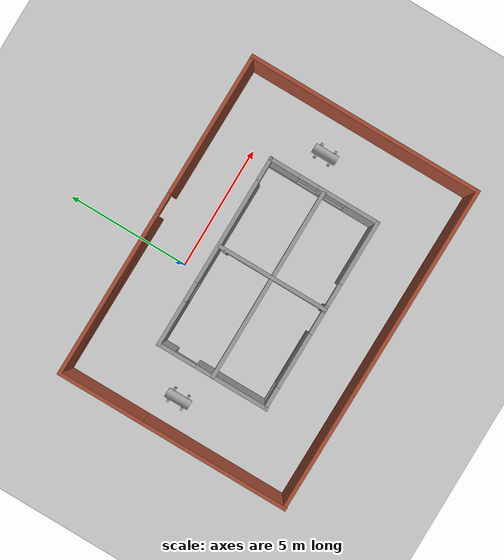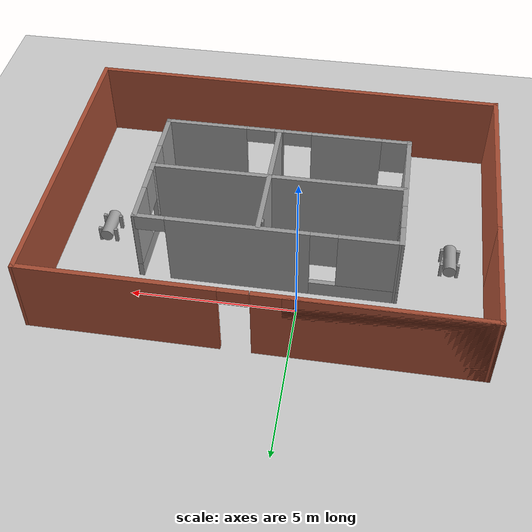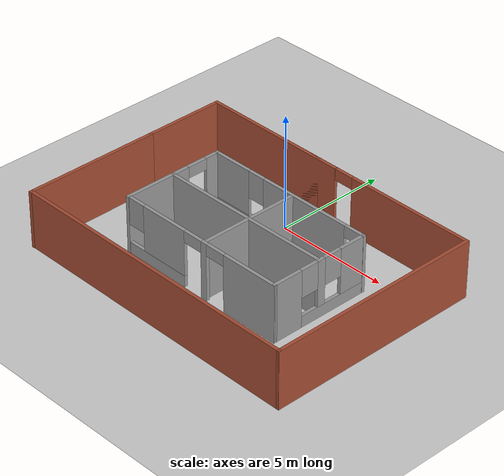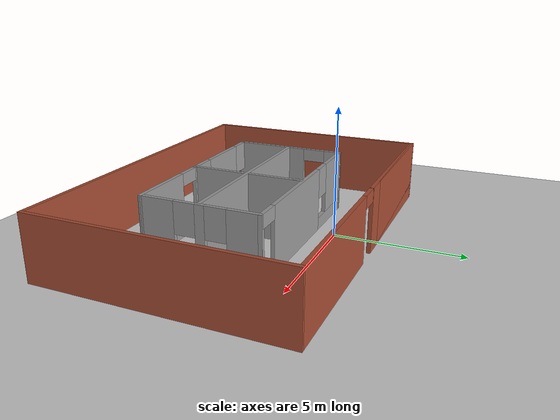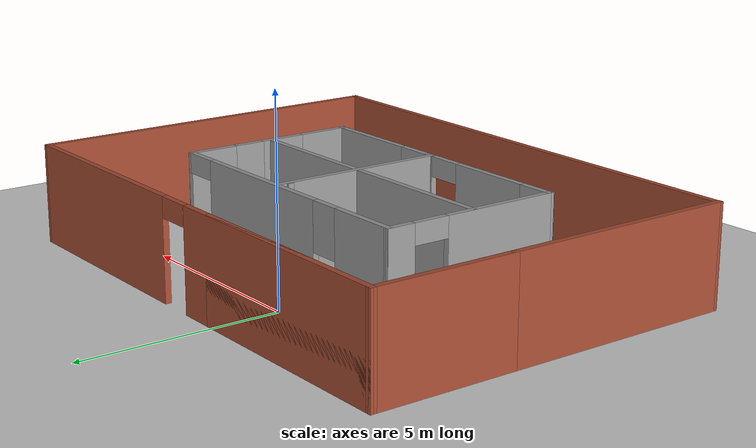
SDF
<sdf version="1.6">
 <world name="default">
  <plugin name="hello" filename="libhello.so"/>
  <light name="sun" type="directional">
   <pose>0 0 10 0 -0 0</pose>
   <diffuse>0.8 0.8 0.8 1</diffuse>
   <specular>0.2 0.2 0.2 1</specular>
   <attenuation>
    <range>1000</range>
    <constant>0.9</constant>
    <linear>0.01</linear>
    <quadratic>0.001</quadratic>
   </attenuation>
   <direction>-0.5 0.1 -0.9</direction>
  </light>
  <model name="ground_plane">
   <static>1</static>
   <link name="link">
    <collision name="collision">
     <geometry><plane><normal>0 0 1</normal><size>100 100</size></plane></geometry>
     <surface><friction><ode><mu>100</mu><mu2>50</mu2></ode></friction></surface>
    </collision>
    <visual name="visual">
     <cast_shadows>0</cast_shadows>
     <geometry><plane><normal>0 0 1</normal><size>100 100</size></plane></geometry>
     <material>
      <script><uri>file://media/materials/scripts/gazebo.material</uri><name>Gazebo/Grey</name></script>
     </material>
    </visual>
   </link>
  </model>
  <gravity>0 0 -9.8</gravity>
  <magnetic_field>6e-06 2.3e-05 -4.2e-05</magnetic_field>
  <atmosphere type="adiabatic"/>
  <physics name="default_physics" default="0" type="ode">
   <max_step_size>0.001</max_step_size>
   <real_time_factor>1</real_time_factor>
   <real_time_update_rate>1000</real_time_update_rate>
  </physics>
  <scene><ambient>0.4 0.4 0.4 1</ambient><background>0.7 0.7 0.7 1</background><shadows>1</shadows></scene>
  <spherical_coordinates>
   <surface_model>EARTH_WGS84</surface_model>
   <latitude_deg>0</latitude_deg>
   <longitude_deg>0</longitude_deg>
   <elevation>0</elevation>
   <heading_deg>0</heading_deg>
  </spherical_coordinates>
  <model name="Building">
   <pose>1.04342 -3.05321 0 0 -0 0</pose>
   <link name="Wall_0">
    <collision name="Wall_0_Collision">
     <geometry><box><size>6.03913 0.15 2.5</size></box></geometry>
     <pose>0 0 1.25 0 -0 0</pose>
    </collision>
    <visual name="Wall_0_Visual">
     <pose>0 0 1.25 0 -0 0</pose>
     <geometry><box><size>6.03913 0.15 2.5</size></box></geometry>
     <material>
      <script><uri>file://media/materials/scripts/gazebo.material</uri><name>Gazebo/Bricks</name></script>
      <ambient>1 1 1 1</ambient>
     </material>
     <meta><layer>0</layer></meta>
    </visual>
    <pose>-6.63599 -1.70753 0 0 0 -1.5708</pose>
   </link>
   <link name="Wall_1">
    <collision name="Wall_1_Collision">
     <geometry><box><size>13.4097 0.15 2.5</size></box></geometry>
     <pose>0 0 1.25 0 -0 0</pose>
    </collision>
    <visual name="Wall_1_Visual">
     <pose>0 0 1.25 0 -0 0</pose>
     <geometry><box><size>13.4097 0.15 2.5</size></box></geometry>
     <material>
      <script><uri>file://media/materials/scripts/gazebo.material</uri><name>Gazebo/Bricks</name></script>
      <ambient>1 1 1 1</ambient>
     </material>
     <meta><layer>0</layer></meta>
    </visual>
    <pose>-0.006325 -4.68577 0 0 0 -0.007717</pose>
   </link>
   <link name="Wall_12">
    <collision name="Wall_12_Collision">
     <geometry><box><size>0.15 0.15 2.5</size></box></geometry>
     <pose>0 0 1.25 0 -0 0</pose>
    </collision>
    <visual name="Wall_12_Visual">
     <pose>0 0 1.25 0 -0 0</pose>
     <geometry><box><size>0.15 0.15 2.5</size></box></geometry>
     <material>
      <script><uri>file://media/materials/scripts/gazebo.material</uri><name>Gazebo/Grey</name></script>
      <ambient>1 1 1 1</ambient>
     </material>
     <meta><layer>0</layer></meta>
    </visual>
    <pose>0.155765 1.91213 0 0 -0 0</pose>
   </link>
   <link name="Wall_13">
    <collision name="Wall_13_Collision">
     <geometry><box><size>0.15 0.15 2.5</size></box></geometry>
     <pose>0 0 1.25 0 -0 0</pose>
    </collision>
    <visual name="Wall_13_Visual">
     <pose>0 0 1.25 0 -0 0</pose>
     <geometry><box><size>0.15 0.15 2.5</size></box></geometry>
     <material>
      <script><uri>file://media/materials/scripts/gazebo.material</uri><name>Gazebo/Grey</name></script>
      <ambient>1 1 1 1</ambient>
     </material>
     <meta><layer>0</layer></meta>
    </visual>
    <pose>0.155765 1.91213 0 0 -0 0</pose>
   </link>
   <link name="Wall_16">
    <collision name="Wall_16_Collision">
     <geometry><box><size>4.5 0.15 2.5</size></box></geometry>
     <pose>0 0 1.25 0 -0 0</pose>
    </collision>
    <visual name="Wall_16_Visual">
     <pose>0 0 1.25 0 -0 0</pose>
     <geometry><box><size>4.5 0.15 2.5</size></box></geometry>
     <material>
      <script><uri>file://media/materials/scripts/gazebo.material</uri><name>Gazebo/Grey</name></script>
      <ambient>1 1 1 1</ambient>
     </material>
     <meta><layer>0</layer></meta>
    </visual>
    <pose>0.209311 -0.044225 0 0 -0 1.5708</pose>
   </link>
   <link name="Wall_18">
    <collision name="Wall_18_Collision">
     <geometry><box><size>7.75 0.15 2.5</size></box></geometry>
     <pose>0 0 1.25 0 -0 0</pose>
    </collision>
    <visual name="Wall_18_Visual">
     <pose>0 0 1.25 0 -0 0</pose>
     <geometry><box><size>7.75 0.15 2.5</size></box></geometry>
     <material>
      <script><uri>file://media/materials/scripts/gazebo.material</uri><name>Gazebo/Grey</name></script>
      <ambient>1 1 1 1</ambient>
     </material>
     <meta><layer>0</layer></meta>
    </visual>
    <pose>-0.08044 -0.029696 0 0 -0 0</pose>
   </link>
   <link name="Wall_2">
    <collision name="Wall_2_Collision">
     <geometry><box><size>9.53913 0.15 2.5</size></box></geometry>
     <pose>0 0 1.25 0 -0 0</pose>
    </collision>
    <visual name="Wall_2_Visual">
     <pose>0 0 1.25 0 -0 0</pose>
     <geometry><box><size>9.53913 0.15 2.5</size></box></geometry>
     <material>
      <script><uri>file://media/materials/scripts/gazebo.material</uri><name>Gazebo/Bricks</name></script>
      <ambient>1 1 1 1</ambient>
     </material>
     <meta><layer>0</layer></meta>
    </visual>
    <pose>6.63657 -0.042371 0 0 -0 1.5708</pose>
   </link>
   <link name="Wall_3">
    <pose>-0.006325 4.69461 0 0 -0 3.13519</pose>
    <visual name="Wall_3_Visual_0">
     <pose>-3.80988 0 1.25 0 -0 0</pose>
     <geometry><box><size>5.78985 0.15 2.5</size></box></geometry>
     <material>
      <script><uri>file://media/materials/scripts/gazebo.material</uri><name>Gazebo/Bricks</name></script>
      <ambient>1 1 1 1</ambient>
     </material>
     <meta><layer>0</layer></meta>
    </visual>
    <collision name="Wall_3_Collision_0">
     <geometry><box><size>5.78985 0.15 2.5</size></box></geometry>
     <pose>-3.80988 0 1.25 0 -0 0</pose>
    </collision>
    <visual name="Wall_3_Visual_1">
     <pose>3.34492 0 1.25 0 -0 0</pose>
     <geometry><box><size>6.71976 0.15 2.5</size></box></geometry>
     <material>
      <script><uri>file://media/materials/scripts/gazebo.material</uri><name>Gazebo/Bricks</name></script>
      <ambient>1 1 1 1</ambient>
     </material>
     <meta><layer>0</layer></meta>
    </visual>
    <collision name="Wall_3_Collision_1">
     <geometry><box><size>6.71976 0.15 2.5</size></box></geometry>
     <pose>3.34492 0 1.25 0 -0 0</pose>
    </collision>
    <visual name="Wall_3_Visual_2">
     <pose>3.78107 0 1.25 0 -0 0</pose>
     <geometry><box><size>5.84745 0.15 2.5</size></box></geometry>
     <material>
      <script><uri>file://media/materials/scripts/gazebo.material</uri><name>Gazebo/Bricks</name></script>
      <ambient>1 1 1 1</ambient>
     </material>
     <meta><layer>0</layer></meta>
    </visual>
    <collision name="Wall_3_Collision_2">
     <geometry><box><size>5.84745 0.15 2.5</size></box></geometry>
     <pose>3.78107 0 1.25 0 -0 0</pose>
    </collision>
    <visual name="Wall_3_Visual_3">
     <pose>-0.478802 0 2.25 0 -0 0</pose>
     <geometry><box><size>0.872303 0.15 0.5</size></box></geometry>
     <material>
      <script><uri>file://media/materials/scripts/gazebo.material</uri><name>Gazebo/Bricks</name></script>
      <ambient>1 1 1 1</ambient>
     </material>
     <meta><layer>0</layer></meta>
    </visual>
    <collision name="Wall_3_Collision_3">
     <geometry><box><size>0.872303 0.15 0.5</size></box></geometry>
     <pose>-0.478802 0 2.25 0 -0 0</pose>
    </collision>
   </link>
   <link name="Wall_4">
    <collision name="Wall_4_Collision">
     <geometry><box><size>3.65 0.15 2.5</size></box></geometry>
     <pose>0 0 1.25 0 -0 0</pose>
    </collision>
    <visual name="Wall_4_Visual">
     <pose>0 0 1.25 0 -0 0</pose>
     <geometry><box><size>3.65 0.15 2.5</size></box></geometry>
     <material>
      <script><uri>file://media/materials/scripts/gazebo.material</uri><name>Gazebo/Bricks</name></script>
      <ambient>1 1 1 1</ambient>
     </material>
     <meta><layer>0</layer></meta>
    </visual>
    <pose>-6.63599 2.98703 0 0 0 -1.5708</pose>
   </link>
   <link name="Wall_6">
    <pose>-3.91336 -0.002529 0 0 0 -1.5708</pose>
    <visual name="Wall_6_Visual_0">
     <pose>-1.95748 0 1.25 0 -0 0</pose>
     <geometry><box><size>0.710549 0.15 2.5</size></box></geometry>
     <material>
      <script><uri>file://media/materials/scripts/gazebo.material</uri><name>Gazebo/Grey</name></script>
      <ambient>1 1 1 1</ambient>
     </material>
     <meta><layer>0</layer></meta>
    </visual>
    <collision name="Wall_6_Collision_0">
     <geometry><box><size>0.710549 0.15 2.5</size></box></geometry>
     <pose>-1.95748 0 1.25 0 -0 0</pose>
    </collision>
    <visual name="Wall_6_Visual_1">
     <pose>0.805274 0 1.25 0 -0 0</pose>
     <geometry><box><size>3.01495 0.15 2.5</size></box></geometry>
     <material>
      <script><uri>file://media/materials/scripts/gazebo.material</uri><name>Gazebo/Grey</name></script>
      <ambient>1 1 1 1</ambient>
     </material>
     <meta><layer>0</layer></meta>
    </visual>
    <collision name="Wall_6_Collision_1">
     <geometry><box><size>3.01495 0.15 2.5</size></box></geometry>
     <pose>0.805274 0 1.25 0 -0 0</pose>
    </collision>
    <visual name="Wall_6_Visual_2">
     <pose>-1.1522 0 2.25 0 -0 0</pose>
     <geometry><box><size>0.9 0.15 0.5</size></box></geometry>
     <material>
      <script><uri>file://media/materials/scripts/gazebo.material</uri><name>Gazebo/Grey</name></script>
      <ambient>1 1 1 1</ambient>
     </material>
     <meta><layer>0</layer></meta>
    </visual>
    <collision name="Wall_6_Collision_2">
     <geometry><box><size>0.9 0.15 0.5</size></box></geometry>
     <pose>-1.1522 0 2.25 0 -0 0</pose>
    </collision>
   </link>
   <link name="Wall_7">
    <pose>-0.04296 -2.23022 0 0 0 -0.002598</pose>
    <visual name="Wall_7_Visual_0">
     <pose>-3.87288 0 1.25 0 -0 0</pose>
     <geometry><box><size>0.145062 0.15 2.5</size></box></geometry>
     <material>
      <script><uri>file://media/materials/scripts/gazebo.material</uri><name>Gazebo/Grey</name></script>
      <ambient>1 1 1 1</ambient>
     </material>
     <meta><layer>0</layer></meta>
    </visual>
    <collision name="Wall_7_Collision_0">
     <geometry><box><size>0.145062 0.15 2.5</size></box></geometry>
     <pose>-3.87288 0 1.25 0 -0 0</pose>
    </collision>
    <visual name="Wall_7_Visual_1">
     <pose>0.276 0 1.25 0 -0 0</pose>
     <geometry><box><size>0.29028 0.15 2.5</size></box></geometry>
     <material>
      <script><uri>file://media/materials/scripts/gazebo.material</uri><name>Gazebo/Grey</name></script>
      <ambient>1 1 1 1</ambient>
     </material>
     <meta><layer>0</layer></meta>
    </visual>
    <collision name="Wall_7_Collision_1">
     <geometry><box><size>0.29028 0.15 2.5</size></box></geometry>
     <pose>0.276 0 1.25 0 -0 0</pose>
    </collision>
    <visual name="Wall_7_Visual_2">
     <pose>2.63327 0 1.25 0 -0 0</pose>
     <geometry><box><size>2.62427 0.15 2.5</size></box></geometry>
     <material>
      <script><uri>file://media/materials/scripts/gazebo.material</uri><name>Gazebo/Grey</name></script>
      <ambient>1 1 1 1</ambient>
     </material>
     <meta><layer>0</layer></meta>
    </visual>
    <collision name="Wall_7_Collision_2">
     <geometry><box><size>2.62427 0.15 2.5</size></box></geometry>
     <pose>2.63327 0 1.25 0 -0 0</pose>
    </collision>
    <visual name="Wall_7_Visual_3">
     <pose>-2.28475 0 0.25 0 -0 0</pose>
     <geometry><box><size>3.03121 0.15 0.5</size></box></geometry>
     <material>
      <script><uri>file://media/materials/scripts/gazebo.material</uri><name>Gazebo/Grey</name></script>
      <ambient>1 1 1 1</ambient>
     </material>
     <meta><layer>0</layer></meta>
    </visual>
    <collision name="Wall_7_Collision_3">
     <geometry><box><size>3.03121 0.15 0.5</size></box></geometry>
     <pose>-2.28475 0 0.25 0 -0 0</pose>
    </collision>
    <visual name="Wall_7_Visual_4">
     <pose>-1.88474 0 1.5 0 -0 0</pose>
     <geometry><box><size>2.23121 0.15 2</size></box></geometry>
     <material>
      <script><uri>file://media/materials/scripts/gazebo.material</uri><name>Gazebo/Grey</name></script>
      <ambient>1 1 1 1</ambient>
     </material>
     <meta><layer>0</layer></meta>
    </visual>
    <collision name="Wall_7_Collision_4">
     <geometry><box><size>2.23121 0.15 2</size></box></geometry>
     <pose>-1.88474 0 1.5 0 -0 0</pose>
    </collision>
    <visual name="Wall_7_Visual_5">
     <pose>-3.40035 0 1.9 0 -0 0</pose>
     <geometry><box><size>0.8 0.15 1.2</size></box></geometry>
     <material>
      <script><uri>file://media/materials/scripts/gazebo.material</uri><name>Gazebo/Grey</name></script>
      <ambient>1 1 1 1</ambient>
     </material>
     <meta><layer>0</layer></meta>
    </visual>
    <collision name="Wall_7_Collision_5">
     <geometry><box><size>0.8 0.15 1.2</size></box></geometry>
     <pose>-3.40035 0 1.9 0 -0 0</pose>
    </collision>
    <visual name="Wall_7_Visual_6">
     <pose>0.87114 0 2.25 0 -0 0</pose>
     <geometry><box><size>0.9 0.15 0.5</size></box></geometry>
     <material>
      <script><uri>file://media/materials/scripts/gazebo.material</uri><name>Gazebo/Grey</name></script>
      <ambient>1 1 1 1</ambient>
     </material>
     <meta><layer>0</layer></meta>
    </visual>
    <collision name="Wall_7_Collision_6">
     <geometry><box><size>0.9 0.15 0.5</size></box></geometry>
     <pose>0.87114 0 2.25 0 -0 0</pose>
    </collision>
    <visual name="Wall_7_Visual_7">
     <pose>-0.31914 0 2.25 0 -0 0</pose>
     <geometry><box><size>0.9 0.15 0.5</size></box></geometry>
     <material>
      <script><uri>file://media/materials/scripts/gazebo.material</uri><name>Gazebo/Grey</name></script>
      <ambient>1 1 1 1</ambient>
     </material>
     <meta><layer>0</layer></meta>
    </visual>
    <collision name="Wall_7_Collision_7">
     <geometry><box><size>0.9 0.15 0.5</size></box></geometry>
     <pose>-0.31914 0 2.25 0 -0 0</pose>
    </collision>
   </link>
   <link name="Wall_8">
    <pose>3.82744 -0.002529 0 0 -0 1.5708</pose>
    <visual name="Wall_8_Visual_0">
     <pose>-1.61662 0 1.25 0 -0 0</pose>
     <geometry><box><size>1.35204 0.15 2.5</size></box></geometry>
     <material>
      <script><uri>file://media/materials/scripts/gazebo.material</uri><name>Gazebo/Grey</name></script>
      <ambient>1 1 1 1</ambient>
     </material>
     <meta><layer>0</layer></meta>
    </visual>
    <collision name="Wall_8_Collision_0">
     <geometry><box><size>1.35204 0.15 2.5</size></box></geometry>
     <pose>-1.61662 0 1.25 0 -0 0</pose>
    </collision>
    <visual name="Wall_8_Visual_1">
     <pose>0.676019 0 0.25 0 -0 0</pose>
     <geometry><box><size>3.23324 0.15 0.5</size></box></geometry>
     <material>
      <script><uri>file://media/materials/scripts/gazebo.material</uri><name>Gazebo/Grey</name></script>
      <ambient>1 1 1 1</ambient>
     </material>
     <meta><layer>0</layer></meta>
    </visual>
    <collision name="Wall_8_Collision_1">
     <geometry><box><size>3.23324 0.15 0.5</size></box></geometry>
     <pose>0.676019 0 0.25 0 -0 0</pose>
    </collision>
    <visual name="Wall_8_Visual_2">
     <pose>0.041301 0 1.5 0 -0 0</pose>
     <geometry><box><size>0.3638 0.15 2</size></box></geometry>
     <material>
      <script><uri>file://media/materials/scripts/gazebo.material</uri><name>Gazebo/Grey</name></script>
      <ambient>1 1 1 1</ambient>
     </material>
     <meta><layer>0</layer></meta>
    </visual>
    <collision name="Wall_8_Collision_2">
     <geometry><box><size>0.3638 0.15 2</size></box></geometry>
     <pose>0.041301 0 1.5 0 -0 0</pose>
    </collision>
    <visual name="Wall_8_Visual_3">
     <pose>1.65792 0 1.5 0 -0 0</pose>
     <geometry><box><size>1.26944 0.15 2</size></box></geometry>
     <material>
      <script><uri>file://media/materials/scripts/gazebo.material</uri><name>Gazebo/Grey</name></script>
      <ambient>1 1 1 1</ambient>
     </material>
     <meta><layer>0</layer></meta>
    </visual>
    <collision name="Wall_8_Collision_3">
     <geometry><box><size>1.26944 0.15 2</size></box></geometry>
     <pose>1.65792 0 1.5 0 -0 0</pose>
    </collision>
    <visual name="Wall_8_Visual_4">
     <pose>-0.540598 0 1.9 0 -0 0</pose>
     <geometry><box><size>0.8 0.15 1.2</size></box></geometry>
     <material>
      <script><uri>file://media/materials/scripts/gazebo.material</uri><name>Gazebo/Grey</name></script>
      <ambient>1 1 1 1</ambient>
     </material>
     <meta><layer>0</layer></meta>
    </visual>
    <collision name="Wall_8_Collision_4">
     <geometry><box><size>0.8 0.15 1.2</size></box></geometry>
     <pose>-0.540598 0 1.9 0 -0 0</pose>
    </collision>
    <visual name="Wall_8_Visual_5">
     <pose>0.623201 0 1.9 0 -0 0</pose>
     <geometry><box><size>0.8 0.15 1.2</size></box></geometry>
     <material>
      <script><uri>file://media/materials/scripts/gazebo.material</uri><name>Gazebo/Grey</name></script>
      <ambient>1 1 1 1</ambient>
     </material>
     <meta><layer>0</layer></meta>
    </visual>
    <collision name="Wall_8_Collision_5">
     <geometry><box><size>0.8 0.15 1.2</size></box></geometry>
     <pose>0.623201 0 1.9 0 -0 0</pose>
    </collision>
   </link>
   <link name="Wall_9">
    <pose>-0.035398 2.22516 0 0 -0 3.13899</pose>
    <visual name="Wall_9_Visual_0">
     <pose>-3.90573 0 1.25 0 -0 0</pose>
     <geometry><box><size>0.079351 0.15 2.5</size></box></geometry>
     <material>
      <script><uri>file://media/materials/scripts/gazebo.material</uri><name>Gazebo/Grey</name></script>
      <ambient>1 1 1 1</ambient>
     </material>
     <meta><layer>0</layer></meta>
    </visual>
    <collision name="Wall_9_Collision_0">
     <geometry><box><size>0.079351 0.15 2.5</size></box></geometry>
     <pose>-3.90573 0 1.25 0 -0 0</pose>
    </collision>
    <visual name="Wall_9_Visual_1">
     <pose>-0.845033 0 1.25 0 -0 0</pose>
     <geometry><box><size>4.24205 0.15 2.5</size></box></geometry>
     <material>
      <script><uri>file://media/materials/scripts/gazebo.material</uri><name>Gazebo/Grey</name></script>
      <ambient>1 1 1 1</ambient>
     </material>
     <meta><layer>0</layer></meta>
    </visual>
    <collision name="Wall_9_Collision_1">
     <geometry><box><size>4.24205 0.15 2.5</size></box></geometry>
     <pose>-0.845033 0 1.25 0 -0 0</pose>
    </collision>
    <visual name="Wall_9_Visual_2">
     <pose>2.6107 0 0.25 0 -0 0</pose>
     <geometry><box><size>2.66942 0.15 0.5</size></box></geometry>
     <material>
      <script><uri>file://media/materials/scripts/gazebo.material</uri><name>Gazebo/Grey</name></script>
      <ambient>1 1 1 1</ambient>
     </material>
     <meta><layer>0</layer></meta>
    </visual>
    <collision name="Wall_9_Collision_2">
     <geometry><box><size>2.66942 0.15 0.5</size></box></geometry>
     <pose>2.6107 0 0.25 0 -0 0</pose>
    </collision>
    <visual name="Wall_9_Visual_3">
     <pose>3.0107 0 1.5 0 -0 0</pose>
     <geometry><box><size>1.86942 0.15 2</size></box></geometry>
     <material>
      <script><uri>file://media/materials/scripts/gazebo.material</uri><name>Gazebo/Grey</name></script>
      <ambient>1 1 1 1</ambient>
     </material>
     <meta><layer>0</layer></meta>
    </visual>
    <collision name="Wall_9_Collision_3">
     <geometry><box><size>1.86942 0.15 2</size></box></geometry>
     <pose>3.0107 0 1.5 0 -0 0</pose>
    </collision>
    <visual name="Wall_9_Visual_4">
     <pose>1.67599 0 1.9 0 -0 0</pose>
     <geometry><box><size>0.8 0.15 1.2</size></box></geometry>
     <material>
      <script><uri>file://media/materials/scripts/gazebo.material</uri><name>Gazebo/Grey</name></script>
      <ambient>1 1 1 1</ambient>
     </material>
     <meta><layer>0</layer></meta>
    </visual>
    <collision name="Wall_9_Collision_4">
     <geometry><box><size>0.8 0.15 1.2</size></box></geometry>
     <pose>1.67599 0 1.9 0 -0 0</pose>
    </collision>
    <visual name="Wall_9_Visual_5">
     <pose>-3.41606 0 2.25 0 -0 0</pose>
     <geometry><box><size>0.9 0.15 0.5</size></box></geometry>
     <material>
      <script><uri>file://media/materials/scripts/gazebo.material</uri><name>Gazebo/Grey</name></script>
      <ambient>1 1 1 1</ambient>
     </material>
     <meta><layer>0</layer></meta>
    </visual>
    <collision name="Wall_9_Collision_5">
     <geometry><box><size>0.9 0.15 0.5</size></box></geometry>
     <pose>-3.41606 0 2.25 0 -0 0</pose>
    </collision>
   </link>
   <static>1</static>
  </model>
  <model name="HumanoidRobot">
   <link name="link_0">
    <pose>0 0 0.088 1.6 -0 0</pose>
    <inertial>
     <mass>1</mass>
     <inertia><ixx>0.145833</ixx><ixy>0</ixy><ixz>0</ixz><iyy>0.145833</iyy><iyz>0</iyz><izz>0.125</izz></inertia>
    </inertial>
    <visual name="visual">
     <geometry><cylinder><radius>0.2</radius><length>1</length></cylinder></geometry>
     <material>
      <lighting>1</lighting>
      <script><uri>file://media/materials/scripts/gazebo.material</uri><name>Gazebo/Grey</name></script>
      <shader type="pixel"><normal_map>__default__</normal_map></shader>
      <ambient>0.3 0.3 0.3 1</ambient>
      <diffuse>0.7 0.7 0.7 1</diffuse>
      <specular>0.01 0.01 0.01 1</specular>
      <emissive>0 0 0 1</emissive>
     </material>
    </visual>
    <collision name="collision">
     <geometry><cylinder><radius>0.2</radius><length>1</length></cylinder></geometry>
     <surface>
      <friction>
       <ode><mu>1</mu><mu2>1</mu2><fdir1>0 0 0</fdir1><slip1>0</slip1><slip2>0</slip2></ode>
       <torsional>
        <coefficient>1</coefficient>
        <patch_radius>0</patch_radius>
        <surface_radius>0</surface_radius>
        <use_patch_radius>1</use_patch_radius>
        <ode><slip>0</slip></ode>
       </torsional>
      </friction>
      <bounce><restitution_coefficient>0</restitution_coefficient><threshold>1e+06</threshold></bounce>
      <contact>
       <collide_without_contact>0</collide_without_contact>
       <collide_without_contact_bitmask>1</collide_without_contact_bitmask>
       <collide_bitmask>1</collide_bitmask>
       <ode>
        <soft_cfm>0</soft_cfm>
        <soft_erp>0.2</soft_erp>
        <kp>1e+13</kp>
        <kd>1</kd>
        <max_vel>0.01</max_vel>
        <min_depth>0</min_depth>
       </ode>
       <bullet>
        <split_impulse>1</split_impulse>
        <split_impulse_penetration_threshold>-0.01</split_impulse_penetration_threshold>
        <soft_cfm>0</soft_cfm>
        <soft_erp>0.2</soft_erp>
        <kp>1e+13</kp>
        <kd>1</kd>
       </bullet>
      </contact>
     </surface>
    </collision>
   </link>
   <link name="link_1">
    <pose>0.25 0.3 -0.022 0 -0 0</pose>
    <inertial>
     <mass>1</mass>
     <inertia>
      <ixx>0.166667</ixx>
      <ixy>0</ixy>
      <ixz>0</ixz>
      <iyy>0.166667</iyy>
      <iyz>0</iyz>
      <izz>0.166667</izz>
     </inertia>
    </inertial>
    <visual name="visual">
     <geometry><box><size>0.1 0.1 0.5</size></box></geometry>
     <material>
      <lighting>1</lighting>
      <script><uri>file://media/materials/scripts/gazebo.material</uri><name>Gazebo/Grey</name></script>
      <shader type="pixel"><normal_map>__default__</normal_map></shader>
      <ambient>0.3 0.3 0.3 1</ambient>
      <diffuse>0.7 0.7 0.7 1</diffuse>
      <specular>0.01 0.01 0.01 1</specular>
      <emissive>0 0 0 1</emissive>
     </material>
    </visual>
    <collision name="collision">
     <geometry><box><size>0.1 0.1 0.5</size></box></geometry>
     <surface>
      <friction>
       <ode><mu>1</mu><mu2>1</mu2><fdir1>0 0 0</fdir1><slip1>0</slip1><slip2>0</slip2></ode>
       <torsional>
        <coefficient>1</coefficient>
        <patch_radius>0</patch_radius>
        <surface_radius>0</surface_radius>
        <use_patch_radius>1</use_patch_radius>
        <ode><slip>0</slip></ode>
       </torsional>
      </friction>
      <bounce><restitution_coefficient>0</restitution_coefficient><threshold>1e+06</threshold></bounce>
      <contact>
       <collide_without_contact>0</collide_without_contact>
       <collide_without_contact_bitmask>1</collide_without_contact_bitmask>
       <collide_bitmask>1</collide_bitmask>
       <ode>
        <soft_cfm>0</soft_cfm>
        <soft_erp>0.2</soft_erp>
        <kp>1e+13</kp>
        <kd>1</kd>
        <max_vel>0.01</max_vel>
        <min_depth>0</min_depth>
       </ode>
       <bullet>
        <split_impulse>1</split_impulse>
        <split_impulse_penetration_threshold>-0.01</split_impulse_penetration_threshold>
        <soft_cfm>0</soft_cfm>
        <soft_erp>0.2</soft_erp>
        <kp>1e+13</kp>
        <kd>1</kd>
       </bullet>
      </contact>
     </surface>
    </collision>
   </link>
   <link name="link_1_clone">
    <pose>0.25 -0.3 -0.022 0 -0 0</pose>
    <inertial>
     <mass>1</mass>
     <inertia>
      <ixx>0.166667</ixx>
      <ixy>0</ixy>
      <ixz>0</ixz>
      <iyy>0.166667</iyy>
      <iyz>0</iyz>
      <izz>0.166667</izz>
     </inertia>
    </inertial>
    <visual name="visual">
     <geometry><box><size>0.1 0.1 0.5</size></box></geometry>
     <material>
      <lighting>1</lighting>
      <script><uri>file://media/materials/scripts/gazebo.material</uri><name>Gazebo/Grey</name></script>
      <shader type="pixel"><normal_map>__default__</normal_map></shader>
      <ambient>0.3 0.3 0.3 1</ambient>
      <diffuse>0.7 0.7 0.7 1</diffuse>
      <specular>0.01 0.01 0.01 1</specular>
      <emissive>0 0 0 1</emissive>
     </material>
    </visual>
    <collision name="collision">
     <geometry><box><size>0.1 0.1 0.5</size></box></geometry>
     <surface>
      <friction>
       <ode><mu>1</mu><mu2>1</mu2><fdir1>0 0 0</fdir1><slip1>0</slip1><slip2>0</slip2></ode>
       <torsional>
        <coefficient>1</coefficient>
        <patch_radius>0</patch_radius>
        <surface_radius>0</surface_radius>
        <use_patch_radius>1</use_patch_radius>
        <ode><slip>0</slip></ode>
       </torsional>
      </friction>
      <bounce><restitution_coefficient>0</restitution_coefficient><threshold>1e+06</threshold></bounce>
      <contact>
       <collide_without_contact>0</collide_without_contact>
       <collide_without_contact_bitmask>1</collide_without_contact_bitmask>
       <collide_bitmask>1</collide_bitmask>
       <ode>
        <soft_cfm>0</soft_cfm>
        <soft_erp>0.2</soft_erp>
        <kp>1e+13</kp>
        <kd>1</kd>
        <max_vel>0.01</max_vel>
        <min_depth>0</min_depth>
       </ode>
       <bullet>
        <split_impulse>1</split_impulse>
        <split_impulse_penetration_threshold>-0.01</split_impulse_penetration_threshold>
        <soft_cfm>0</soft_cfm>
        <soft_erp>0.2</soft_erp>
        <kp>1e+13</kp>
        <kd>1</kd>
       </bullet>
      </contact>
     </surface>
    </collision>
   </link>
   <link name="link_1_clone_0">
    <pose>-0.25 0.3 -0.022 0 -0 0</pose>
    <inertial>
     <mass>1</mass>
     <inertia>
      <ixx>0.166667</ixx>
      <ixy>0</ixy>
      <ixz>0</ixz>
      <iyy>0.166667</iyy>
      <iyz>0</iyz>
      <izz>0.166667</izz>
     </inertia>
    </inertial>
    <visual name="visual">
     <geometry><box><size>0.1 0.1 0.5</size></box></geometry>
     <material>
      <lighting>1</lighting>
      <script><uri>file://media/materials/scripts/gazebo.material</uri><name>Gazebo/Grey</name></script>
      <shader type="pixel"><normal_map>__default__</normal_map></shader>
      <ambient>0.3 0.3 0.3 1</ambient>
      <diffuse>0.7 0.7 0.7 1</diffuse>
      <specular>0.01 0.01 0.01 1</specular>
      <emissive>0 0 0 1</emissive>
     </material>
    </visual>
    <collision name="collision">
     <geometry><box><size>0.1 0.1 0.5</size></box></geometry>
     <surface>
      <friction>
       <ode><mu>1</mu><mu2>1</mu2><fdir1>0 0 0</fdir1><slip1>0</slip1><slip2>0</slip2></ode>
       <torsional>
        <coefficient>1</coefficient>
        <patch_radius>0</patch_radius>
        <surface_radius>0</surface_radius>
        <use_patch_radius>1</use_patch_radius>
        <ode><slip>0</slip></ode>
       </torsional>
      </friction>
      <bounce><restitution_coefficient>0</restitution_coefficient><threshold>1e+06</threshold></bounce>
      <contact>
       <collide_without_contact>0</collide_without_contact>
       <collide_without_contact_bitmask>1</collide_without_contact_bitmask>
       <collide_bitmask>1</collide_bitmask>
       <ode>
        <soft_cfm>0</soft_cfm>
        <soft_erp>0.2</soft_erp>
        <kp>1e+13</kp>
        <kd>1</kd>
        <max_vel>0.01</max_vel>
        <min_depth>0</min_depth>
       </ode>
       <bullet>
        <split_impulse>1</split_impulse>
        <split_impulse_penetration_threshold>-0.01</split_impulse_penetration_threshold>
        <soft_cfm>0</soft_cfm>
        <soft_erp>0.2</soft_erp>
        <kp>1e+13</kp>
        <kd>1</kd>
       </bullet>
      </contact>
     </surface>
    </collision>
   </link>
   <link name="link_1_clone_1">
    <pose>-0.25 -0.3 -0.022 0 -0 0</pose>
    <inertial>
     <mass>1</mass>
     <inertia>
      <ixx>0.166667</ixx>
      <ixy>0</ixy>
      <ixz>0</ixz>
      <iyy>0.166667</iyy>
      <iyz>0</iyz>
      <izz>0.166667</izz>
     </inertia>
    </inertial>
    <visual name="visual">
     <geometry><box><size>0.1 0.1 0.5</size></box></geometry>
     <material>
      <lighting>1</lighting>
      <script><uri>file://media/materials/scripts/gazebo.material</uri><name>Gazebo/Grey</name></script>
      <shader type="pixel"><normal_map>__default__</normal_map></shader>
      <ambient>0.3 0.3 0.3 1</ambient>
      <diffuse>0.7 0.7 0.7 1</diffuse>
      <specular>0.01 0.01 0.01 1</specular>
      <emissive>0 0 0 1</emissive>
     </material>
    </visual>
    <collision name="collision">
     <geometry><box><size>0.1 0.1 0.5</size></box></geometry>
     <surface>
      <friction>
       <ode><mu>1</mu><mu2>1</mu2><fdir1>0 0 0</fdir1><slip1>0</slip1><slip2>0</slip2></ode>
       <torsional>
        <coefficient>1</coefficient>
        <patch_radius>0</patch_radius>
        <surface_radius>0</surface_radius>
        <use_patch_radius>1</use_patch_radius>
        <ode><slip>0</slip></ode>
       </torsional>
      </friction>
      <bounce><restitution_coefficient>0</restitution_coefficient><threshold>1e+06</threshold></bounce>
      <contact>
       <collide_without_contact>0</collide_without_contact>
       <collide_without_contact_bitmask>1</collide_without_contact_bitmask>
       <collide_bitmask>1</collide_bitmask>
       <ode>
        <soft_cfm>0</soft_cfm>
        <soft_erp>0.2</soft_erp>
        <kp>1e+13</kp>
        <kd>1</kd>
        <max_vel>0.01</max_vel>
        <min_depth>0</min_depth>
       </ode>
       <bullet>
        <split_impulse>1</split_impulse>
        <split_impulse_penetration_threshold>-0.01</split_impulse_penetration_threshold>
        <soft_cfm>0</soft_cfm>
        <soft_erp>0.2</soft_erp>
        <kp>1e+13</kp>
        <kd>1</kd>
       </bullet>
      </contact>
     </surface>
    </collision>
   </link>
   <joint name="link_0_JOINT_0" type="revolute">
    <parent>link_0</parent>
    <child>link_1_clone_1</child>
    <axis>
     <xyz>-1 0 0</xyz>
     <use_parent_model_frame>0</use_parent_model_frame>
     <limit>
      <lower>-1.79769e+308</lower>
      <upper>1.79769e+308</upper>
      <effort>-1</effort>
      <velocity>-1</velocity>
     </limit>
     <dynamics>
      <spring_reference>0</spring_reference>
      <spring_stiffness>0</spring_stiffness>
      <damping>1</damping>
      <friction>0.2</friction>
     </dynamics>
    </axis>
    <physics>
     <ode><limit><cfm>0</cfm><erp>0.2</erp></limit><suspension><cfm>0</cfm><erp>0.2</erp></suspension></ode>
    </physics>
   </joint>
   <joint name="link_0_JOINT_1" type="revolute">
    <parent>link_0</parent>
    <child>link_1_clone_0</child>
    <axis>
     <xyz>-1 0 0</xyz>
     <use_parent_model_frame>0</use_parent_model_frame>
     <limit>
      <lower>-1.79769e+308</lower>
      <upper>1.79769e+308</upper>
      <effort>-1</effort>
      <velocity>-1</velocity>
     </limit>
     <dynamics>
      <spring_reference>0</spring_reference>
      <spring_stiffness>0</spring_stiffness>
      <damping>1</damping>
      <friction>0.2</friction>
     </dynamics>
    </axis>
    <physics>
     <ode><limit><cfm>0</cfm><erp>0.2</erp></limit><suspension><cfm>0</cfm><erp>0.2</erp></suspension></ode>
    </physics>
   </joint>
   <joint name="link_0_JOINT_3" type="revolute">
    <parent>link_0</parent>
    <child>link_1</child>
    <axis>
     <xyz>1 0 0</xyz>
     <use_parent_model_frame>0</use_parent_model_frame>
     <limit>
      <lower>-1.79769e+308</lower>
      <upper>1.79769e+308</upper>
      <effort>-1</effort>
      <velocity>-1</velocity>
     </limit>
     <dynamics>
      <spring_reference>0</spring_reference>
      <spring_stiffness>0</spring_stiffness>
      <damping>1</damping>
      <friction>0.2</friction>
     </dynamics>
    </axis>
    <physics>
     <ode><limit><cfm>0</cfm><erp>0.2</erp></limit><suspension><cfm>0</cfm><erp>0.2</erp></suspension></ode>
    </physics>
   </joint>
   <joint name="link_0_JOINT_4" type="revolute">
    <parent>link_0</parent>
    <child>link_1_clone</child>
    <axis>
     <xyz>1 0 0</xyz>
     <use_parent_model_frame>0</use_parent_model_frame>
     <limit>
      <lower>-1.79769e+308</lower>
      <upper>1.79769e+308</upper>
      <effort>-1</effort>
      <velocity>-1</velocity>
     </limit>
     <dynamics>
      <spring_reference>0</spring_reference>
      <spring_stiffness>0</spring_stiffness>
      <damping>1</damping>
      <friction>0.2</friction>
     </dynamics>
    </axis>
    <physics>
     <ode><limit><cfm>0</cfm><erp>0.2</erp></limit><suspension><cfm>0</cfm><erp>0.2</erp></suspension></ode>
    </physics>
   </joint>
   <static>0</static>
   <pose>-4.44366 -2.40393 0.272 0 -0 0.000181</pose>
  </model>
  <model name="HumanoidRobot_0">
   <link name="link_0">
    <pose>0 0 0.088 1.6 -0 0</pose>
    <inertial>
     <mass>1</mass>
     <inertia><ixx>0.145833</ixx><ixy>0</ixy><ixz>0</ixz><iyy>0.145833</iyy><iyz>0</iyz><izz>0.125</izz></inertia>
    </inertial>
    <visual name="visual">
     <geometry><cylinder><radius>0.2</radius><length>1</length></cylinder></geometry>
     <material>
      <lighting>1</lighting>
      <script><uri>file://media/materials/scripts/gazebo.material</uri><name>Gazebo/Grey</name></script>
      <shader type="pixel"><normal_map>__default__</normal_map></shader>
      <ambient>0.3 0.3 0.3 1</ambient>
      <diffuse>0.7 0.7 0.7 1</diffuse>
      <specular>0.01 0.01 0.01 1</specular>
      <emissive>0 0 0 1</emissive>
     </material>
    </visual>
    <collision name="collision">
     <geometry><cylinder><radius>0.2</radius><length>1</length></cylinder></geometry>
     <surface>
      <friction>
       <ode><mu>1</mu><mu2>1</mu2><fdir1>0 0 0</fdir1><slip1>0</slip1><slip2>0</slip2></ode>
       <torsional>
        <coefficient>1</coefficient>
        <patch_radius>0</patch_radius>
        <surface_radius>0</surface_radius>
        <use_patch_radius>1</use_patch_radius>
        <ode><slip>0</slip></ode>
       </torsional>
      </friction>
      <bounce><restitution_coefficient>0</restitution_coefficient><threshold>1e+06</threshold></bounce>
      <contact>
       <collide_without_contact>0</collide_without_contact>
       <collide_without_contact_bitmask>1</collide_without_contact_bitmask>
       <collide_bitmask>1</collide_bitmask>
       <ode>
        <soft_cfm>0</soft_cfm>
        <soft_erp>0.2</soft_erp>
        <kp>1e+13</kp>
        <kd>1</kd>
        <max_vel>0.01</max_vel>
        <min_depth>0</min_depth>
       </ode>
       <bullet>
        <split_impulse>1</split_impulse>
        <split_impulse_penetration_threshold>-0.01</split_impulse_penetration_threshold>
        <soft_cfm>0</soft_cfm>
        <soft_erp>0.2</soft_erp>
        <kp>1e+13</kp>
        <kd>1</kd>
       </bullet>
      </contact>
     </surface>
    </collision>
   </link>
   <link name="link_1">
    <pose>0.25 0.3 -0.022 0 -0 0</pose>
    <inertial>
     <mass>1</mass>
     <inertia>
      <ixx>0.166667</ixx>
      <ixy>0</ixy>
      <ixz>0</ixz>
      <iyy>0.166667</iyy>
      <iyz>0</iyz>
      <izz>0.166667</izz>
     </inertia>
    </inertial>
    <visual name="visual">
     <geometry><box><size>0.1 0.1 0.5</size></box></geometry>
     <material>
      <lighting>1</lighting>
      <script><uri>file://media/materials/scripts/gazebo.material</uri><name>Gazebo/Grey</name></script>
      <shader type="pixel"><normal_map>__default__</normal_map></shader>
      <ambient>0.3 0.3 0.3 1</ambient>
      <diffuse>0.7 0.7 0.7 1</diffuse>
      <specular>0.01 0.01 0.01 1</specular>
      <emissive>0 0 0 1</emissive>
     </material>
    </visual>
    <collision name="collision">
     <geometry><box><size>0.1 0.1 0.5</size></box></geometry>
     <surface>
      <friction>
       <ode><mu>1</mu><mu2>1</mu2><fdir1>0 0 0</fdir1><slip1>0</slip1><slip2>0</slip2></ode>
       <torsional>
        <coefficient>1</coefficient>
        <patch_radius>0</patch_radius>
        <surface_radius>0</surface_radius>
        <use_patch_radius>1</use_patch_radius>
        <ode><slip>0</slip></ode>
       </torsional>
      </friction>
      <bounce><restitution_coefficient>0</restitution_coefficient><threshold>1e+06</threshold></bounce>
      <contact>
       <collide_without_contact>0</collide_without_contact>
       <collide_without_contact_bitmask>1</collide_without_contact_bitmask>
       <collide_bitmask>1</collide_bitmask>
       <ode>
        <soft_cfm>0</soft_cfm>
        <soft_erp>0.2</soft_erp>
        <kp>1e+13</kp>
        <kd>1</kd>
        <max_vel>0.01</max_vel>
        <min_depth>0</min_depth>
       </ode>
       <bullet>
        <split_impulse>1</split_impulse>
        <split_impulse_penetration_threshold>-0.01</split_impulse_penetration_threshold>
        <soft_cfm>0</soft_cfm>
        <soft_erp>0.2</soft_erp>
        <kp>1e+13</kp>
        <kd>1</kd>
       </bullet>
      </contact>
     </surface>
    </collision>
   </link>
   <link name="link_1_clone">
    <pose>0.25 -0.3 -0.022 0 -0 0</pose>
    <inertial>
     <mass>1</mass>
     <inertia>
      <ixx>0.166667</ixx>
      <ixy>0</ixy>
      <ixz>0</ixz>
      <iyy>0.166667</iyy>
      <iyz>0</iyz>
      <izz>0.166667</izz>
     </inertia>
    </inertial>
    <visual name="visual">
     <geometry><box><size>0.1 0.1 0.5</size></box></geometry>
     <material>
      <lighting>1</lighting>
      <script><uri>file://media/materials/scripts/gazebo.material</uri><name>Gazebo/Grey</name></script>
      <shader type="pixel"><normal_map>__default__</normal_map></shader>
      <ambient>0.3 0.3 0.3 1</ambient>
      <diffuse>0.7 0.7 0.7 1</diffuse>
      <specular>0.01 0.01 0.01 1</specular>
      <emissive>0 0 0 1</emissive>
     </material>
    </visual>
    <collision name="collision">
     <geometry><box><size>0.1 0.1 0.5</size></box></geometry>
     <surface>
      <friction>
       <ode><mu>1</mu><mu2>1</mu2><fdir1>0 0 0</fdir1><slip1>0</slip1><slip2>0</slip2></ode>
       <torsional>
        <coefficient>1</coefficient>
        <patch_radius>0</patch_radius>
        <surface_radius>0</surface_radius>
        <use_patch_radius>1</use_patch_radius>
        <ode><slip>0</slip></ode>
       </torsional>
      </friction>
      <bounce><restitution_coefficient>0</restitution_coefficient><threshold>1e+06</threshold></bounce>
      <contact>
       <collide_without_contact>0</collide_without_contact>
       <collide_without_contact_bitmask>1</collide_without_contact_bitmask>
       <collide_bitmask>1</collide_bitmask>
       <ode>
        <soft_cfm>0</soft_cfm>
        <soft_erp>0.2</soft_erp>
        <kp>1e+13</kp>
        <kd>1</kd>
        <max_vel>0.01</max_vel>
        <min_depth>0</min_depth>
       </ode>
       <bullet>
        <split_impulse>1</split_impulse>
        <split_impulse_penetration_threshold>-0.01</split_impulse_penetration_threshold>
        <soft_cfm>0</soft_cfm>
        <soft_erp>0.2</soft_erp>
        <kp>1e+13</kp>
        <kd>1</kd>
       </bullet>
      </contact>
     </surface>
    </collision>
   </link>
   <link name="link_1_clone_0">
    <pose>-0.25 0.3 -0.022 0 -0 0</pose>
    <inertial>
     <mass>1</mass>
     <inertia>
      <ixx>0.166667</ixx>
      <ixy>0</ixy>
      <ixz>0</ixz>
      <iyy>0.166667</iyy>
      <iyz>0</iyz>
      <izz>0.166667</izz>
     </inertia>
    </inertial>
    <visual name="visual">
     <geometry><box><size>0.1 0.1 0.5</size></box></geometry>
     <material>
      <lighting>1</lighting>
      <script><uri>file://media/materials/scripts/gazebo.material</uri><name>Gazebo/Grey</name></script>
      <shader type="pixel"><normal_map>__default__</normal_map></shader>
      <ambient>0.3 0.3 0.3 1</ambient>
      <diffuse>0.7 0.7 0.7 1</diffuse>
      <specular>0.01 0.01 0.01 1</specular>
      <emissive>0 0 0 1</emissive>
     </material>
    </visual>
    <collision name="collision">
     <geometry><box><size>0.1 0.1 0.5</size></box></geometry>
     <surface>
      <friction>
       <ode><mu>1</mu><mu2>1</mu2><fdir1>0 0 0</fdir1><slip1>0</slip1><slip2>0</slip2></ode>
       <torsional>
        <coefficient>1</coefficient>
        <patch_radius>0</patch_radius>
        <surface_radius>0</surface_radius>
        <use_patch_radius>1</use_patch_radius>
        <ode><slip>0</slip></ode>
       </torsional>
      </friction>
      <bounce><restitution_coefficient>0</restitution_coefficient><threshold>1e+06</threshold></bounce>
      <contact>
       <collide_without_contact>0</collide_without_contact>
       <collide_without_contact_bitmask>1</collide_without_contact_bitmask>
       <collide_bitmask>1</collide_bitmask>
       <ode>
        <soft_cfm>0</soft_cfm>
        <soft_erp>0.2</soft_erp>
        <kp>1e+13</kp>
        <kd>1</kd>
        <max_vel>0.01</max_vel>
        <min_depth>0</min_depth>
       </ode>
       <bullet>
        <split_impulse>1</split_impulse>
        <split_impulse_penetration_threshold>-0.01</split_impulse_penetration_threshold>
        <soft_cfm>0</soft_cfm>
        <soft_erp>0.2</soft_erp>
        <kp>1e+13</kp>
        <kd>1</kd>
       </bullet>
      </contact>
     </surface>
    </collision>
   </link>
   <link name="link_1_clone_1">
    <pose>-0.25 -0.3 -0.022 0 -0 0</pose>
    <inertial>
     <mass>1</mass>
     <inertia>
      <ixx>0.166667</ixx>
      <ixy>0</ixy>
      <ixz>0</ixz>
      <iyy>0.166667</iyy>
      <iyz>0</iyz>
      <izz>0.166667</izz>
     </inertia>
    </inertial>
    <visual name="visual">
     <geometry><box><size>0.1 0.1 0.5</size></box></geometry>
     <material>
      <lighting>1</lighting>
      <script><uri>file://media/materials/scripts/gazebo.material</uri><name>Gazebo/Grey</name></script>
      <shader type="pixel"><normal_map>__default__</normal_map></shader>
      <ambient>0.3 0.3 0.3 1</ambient>
      <diffuse>0.7 0.7 0.7 1</diffuse>
      <specular>0.01 0.01 0.01 1</specular>
      <emissive>0 0 0 1</emissive>
     </material>
    </visual>
    <collision name="collision">
     <geometry><box><size>0.1 0.1 0.5</size></box></geometry>
     <surface>
      <friction>
       <ode><mu>1</mu><mu2>1</mu2><fdir1>0 0 0</fdir1><slip1>0</slip1><slip2>0</slip2></ode>
       <torsional>
        <coefficient>1</coefficient>
        <patch_radius>0</patch_radius>
        <surface_radius>0</surface_radius>
        <use_patch_radius>1</use_patch_radius>
        <ode><slip>0</slip></ode>
       </torsional>
      </friction>
      <bounce><restitution_coefficient>0</restitution_coefficient><threshold>1e+06</threshold></bounce>
      <contact>
       <collide_without_contact>0</collide_without_contact>
       <collide_without_contact_bitmask>1</collide_without_contact_bitmask>
       <collide_bitmask>1</collide_bitmask>
       <ode>
        <soft_cfm>0</soft_cfm>
        <soft_erp>0.2</soft_erp>
        <kp>1e+13</kp>
        <kd>1</kd>
        <max_vel>0.01</max_vel>
        <min_depth>0</min_depth>
       </ode>
       <bullet>
        <split_impulse>1</split_impulse>
        <split_impulse_penetration_threshold>-0.01</split_impulse_penetration_threshold>
        <soft_cfm>0</soft_cfm>
        <soft_erp>0.2</soft_erp>
        <kp>1e+13</kp>
        <kd>1</kd>
       </bullet>
      </contact>
     </surface>
    </collision>
   </link>
   <joint name="link_0_JOINT_0" type="revolute">
    <parent>link_0</parent>
    <child>link_1_clone_1</child>
    <axis>
     <xyz>-1 0 0</xyz>
     <use_parent_model_frame>0</use_parent_model_frame>
     <limit>
      <lower>-1.79769e+308</lower>
      <upper>1.79769e+308</upper>
      <effort>-1</effort>
      <velocity>-1</velocity>
     </limit>
     <dynamics>
      <spring_reference>0</spring_reference>
      <spring_stiffness>0</spring_stiffness>
      <damping>1</damping>
      <friction>0.2</friction>
     </dynamics>
    </axis>
    <physics>
     <ode><limit><cfm>0</cfm><erp>0.2</erp></limit><suspension><cfm>0</cfm><erp>0.2</erp></suspension></ode>
    </physics>
   </joint>
   <joint name="link_0_JOINT_1" type="revolute">
    <parent>link_0</parent>
    <child>link_1_clone_0</child>
    <axis>
     <xyz>-1 0 0</xyz>
     <use_parent_model_frame>0</use_parent_model_frame>
     <limit>
      <lower>-1.79769e+308</lower>
      <upper>1.79769e+308</upper>
      <effort>-1</effort>
      <velocity>-1</velocity>
     </limit>
     <dynamics>
      <spring_reference>0</spring_reference>
      <spring_stiffness>0</spring_stiffness>
      <damping>1</damping>
      <friction>0.2</friction>
     </dynamics>
    </axis>
    <physics>
     <ode><limit><cfm>0</cfm><erp>0.2</erp></limit><suspension><cfm>0</cfm><erp>0.2</erp></suspension></ode>
    </physics>
   </joint>
   <joint name="link_0_JOINT_3" type="revolute">
    <parent>link_0</parent>
    <child>link_1</child>
    <axis>
     <xyz>1 0 0</xyz>
     <use_parent_model_frame>0</use_parent_model_frame>
     <limit>
      <lower>-1.79769e+308</lower>
      <upper>1.79769e+308</upper>
      <effort>-1</effort>
      <velocity>-1</velocity>
     </limit>
     <dynamics>
      <spring_reference>0</spring_reference>
      <spring_stiffness>0</spring_stiffness>
      <damping>1</damping>
      <friction>0.2</friction>
     </dynamics>
    </axis>
    <physics>
     <ode><limit><cfm>0</cfm><erp>0.2</erp></limit><suspension><cfm>0</cfm><erp>0.2</erp></suspension></ode>
    </physics>
   </joint>
   <joint name="link_0_JOINT_4" type="revolute">
    <parent>link_0</parent>
    <child>link_1_clone</child>
    <axis>
     <xyz>1 0 0</xyz>
     <use_parent_model_frame>0</use_parent_model_frame>
     <limit>
      <lower>-1.79769e+308</lower>
      <upper>1.79769e+308</upper>
      <effort>-1</effort>
      <velocity>-1</velocity>
     </limit>
     <dynamics>
      <spring_reference>0</spring_reference>
      <spring_stiffness>0</spring_stiffness>
      <damping>1</damping>
      <friction>0.2</friction>
     </dynamics>
    </axis>
    <physics>
     <ode><limit><cfm>0</cfm><erp>0.2</erp></limit><suspension><cfm>0</cfm><erp>0.2</erp></suspension></ode>
    </physics>
   </joint>
   <static>0</static>
   <pose>6.28163 -2.40491 0.272 0 -0 0.000183</pose>
  </model>
 </world>
</sdf>
